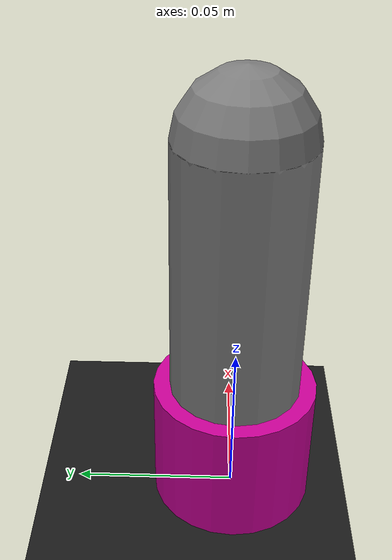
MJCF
<mujoco>
   <option integrator="RK4" timestep="0.001" wind="0.0 0.0 0.0" density="1.2">
   </option>
   <visual>
      <headlight ambient=".4 .4 .4" diffuse=".8 .8 .8" specular="0.1 0.1 0.1"/>
   </visual>
   <asset>
      <texture name="skybox" type="skybox" builtin="gradient" rgb1=".5 .7 .8" rgb2="0 0 0"
               width="800" height="800" mark="random" random="0.005" markrgb="1 .8 .8"/>
      <texture name="table" type="2d" builtin="flat" rgb1=".8 .8 .8"
               width="800" height="800"/>
      <material name="table" texture="table" specular="1.0" reflectance="0.2"/>
  </asset>
   <worldbody>
      <light name="light" directional="true" diffuse="1. 1. 1." pos="0 0 0.1" dir="0 0 -1"/>
      <body name="plane" euler="0.25 0.0 0.0">
         <geom name="plane" type="plane" material="table" size="0 0 0.05" rgba=".1 .1 .1 1" friction="0.01 0.005 0.0001"/>
      </body>
      <body name="puck" pos="0 0 0.0205">
         <joint type="free" name="puck" damping="0.0001"/>
         <geom name="puck" type="cylinder" size=".025 .02" rgba=".8 0 .6 1" friction = "0.01 0.005 0.0001" mass="0.2" solimp="0.9 0.95 0.001 0.5 2"/>
      </body>
      <body name="pusher" pos="0.0 0.0 0.05">
         <joint name="pusher_x" type="slide" axis="1 0 0" damping="0.0"/>
         <joint name="pusher_y" type="slide" axis="0 1 0" damping="0.0"/>
         <geom name="pusher" type="capsule" size="0.02 0.05" pos="0 0 0.02" euler="0.0 0.0 0" friction="1.0 0.005 0001"/>
      </body>

   </worldbody>
   <actuator>
      <general name="start_x" joint="puck"/>
      <general name="start_y" joint="puck"/>
      <general name="push_angle" joint="puck"/>
      <general name="push_vel" joint="puck"/>
      <general name="new_push" joint="puck"/>
    </actuator>
</mujoco>
